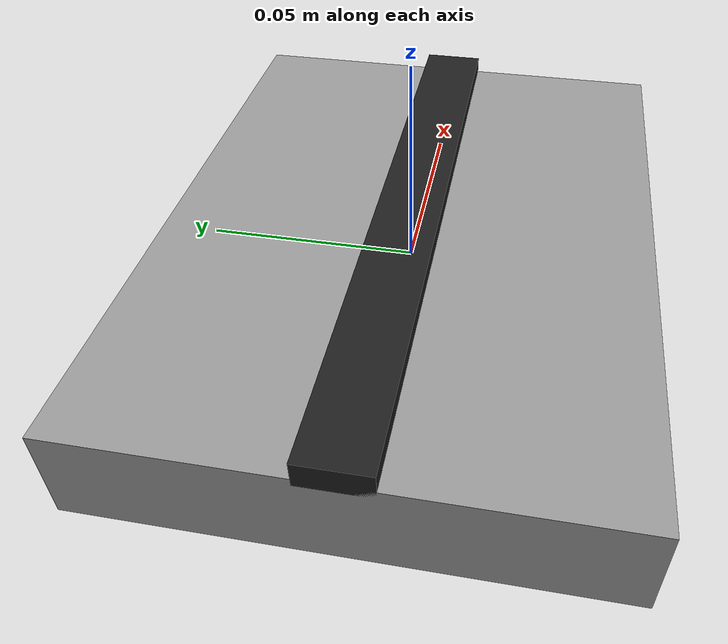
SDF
<?xml version="1.0" ?>
<sdf version="1.6">
  <model name="weld_piece">
    <link name="link">
      <inertial>
        <mass>0.3</mass>
        <inertia>
          <ixx>0.0001</ixx><ixy>0</ixy><ixz>0</ixz>
          <iyy>0.0001</iyy><iyz>0</iyz><izz>0.0002</izz>
        </inertia>
      </inertial>

      <!-- Base Plate (Scaled down) -->
      <collision name="col">
        <geometry><box><size>0.15 0.1125 0.0225</size></box></geometry>
        <surface>
          <friction><ode><mu>1.0</mu><mu2>1.0</mu2></ode></friction>
        </surface>
      </collision>
      <visual name="base">
        <geometry><box><size>0.15 0.1125 0.0225</size></box></geometry>
        <material>
          <script>
            <uri>file://media/materials/scripts/gazebo.material</uri>
            <name>Gazebo/Grey</name>
          </script>
        </material>
      </visual>

      <!-- Raised Weld Strip -->
      <visual name="weld_bead">
        <pose>0 0 0.0125 0 0 0</pose>
        <geometry><box><size>0.15 0.015 0.006</size></box></geometry>
        <material>
          <script>
            <uri>file://media/materials/scripts/gazebo.material</uri>
            <name>Gazebo/FlatBlack</name>
          </script>
        </material>
      </visual>
    </link>
  </model>
</sdf>
